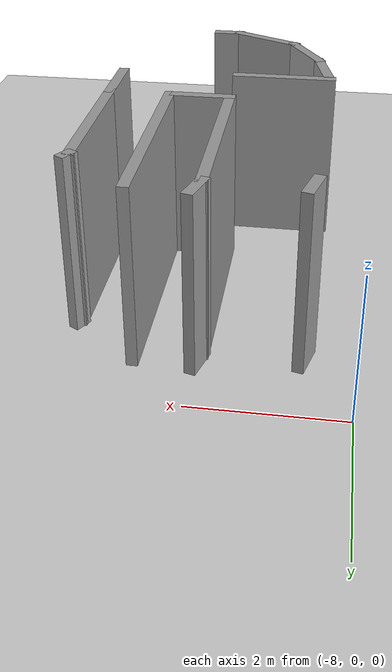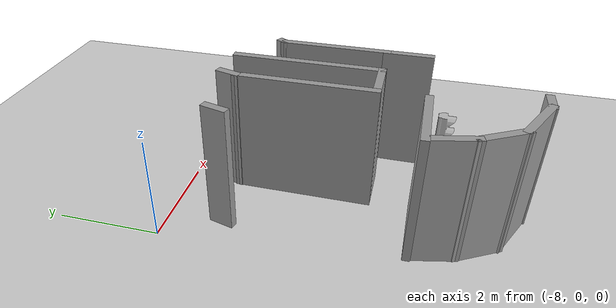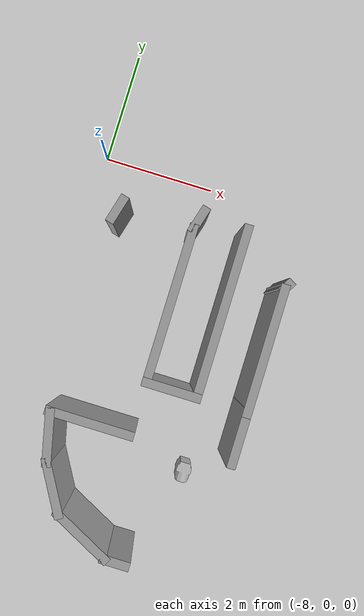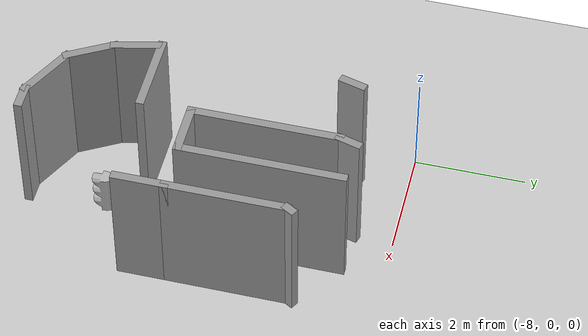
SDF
<sdf version="1.7">
 <world name="default">
  <model name="ground_plane">
   <static>1</static>
   <link name="link">
    <collision name="collision">
     <geometry><plane><normal>0 0 1</normal><size>100 100</size></plane></geometry>
     <surface>
      <contact><collide_bitmask>65535</collide_bitmask></contact>
      <friction><ode><mu>100</mu><mu2>50</mu2></ode></friction>
     </surface>
    </collision>
    <visual name="visual">
     <cast_shadows>0</cast_shadows>
     <geometry><plane><normal>0 0 1</normal><size>100 100</size></plane></geometry>
     <material>
      <script><uri>file://media/materials/scripts/gazebo.material</uri><name>Gazebo/Grey</name></script>
     </material>
    </visual>
   </link>
  </model>
  <model name="Race_Track">
   <link name="Wall_104">
    <pose>-7.85885 -0.567518 0 0 0 -1.8326</pose>
    <visual name="Wall_104_Visual">
     <pose>0 0 1.25 0 -0 0</pose>
     <geometry><box><size>0.5 0.15 2.5</size></box></geometry>
     <material>
      <script><uri>file://media/materials/scripts/gazebo.material</uri><name>Gazebo/Grey</name></script>
      <ambient>1 1 1 1</ambient>
      <shader type="pixel"/>
     </material>
     <meta><layer>0</layer></meta>
    </visual>
    <collision name="Wall_104_Collision">
     <pose>0 0 1.25 0 -0 0</pose>
     <geometry><box><size>0.5 0.15 2.5</size></box></geometry>
     <surface>
      <friction>
       <ode><mu>1</mu><mu2>1</mu2><fdir1>0 0 0</fdir1><slip1>0</slip1><slip2>0</slip2></ode>
       <torsional>
        <coefficient>1</coefficient>
        <patch_radius>0</patch_radius>
        <surface_radius>0</surface_radius>
        <use_patch_radius>1</use_patch_radius>
        <ode><slip>0</slip></ode>
       </torsional>
      </friction>
      <bounce><restitution_coefficient>0</restitution_coefficient><threshold>1e+06</threshold></bounce>
      <contact>
       <collide_without_contact>0</collide_without_contact>
       <collide_without_contact_bitmask>1</collide_without_contact_bitmask>
       <collide_bitmask>1</collide_bitmask>
       <ode>
        <soft_cfm>0</soft_cfm>
        <soft_erp>0.2</soft_erp>
        <kp>1e+13</kp>
        <kd>1</kd>
        <max_vel>0.01</max_vel>
        <min_depth>0</min_depth>
       </ode>
       <bullet>
        <split_impulse>1</split_impulse>
        <split_impulse_penetration_threshold>-0.01</split_impulse_penetration_threshold>
        <soft_cfm>0</soft_cfm>
        <soft_erp>0.2</soft_erp>
        <kp>1e+13</kp>
        <kd>1</kd>
       </bullet>
      </contact>
     </surface>
    </collision>
   </link>
   <link name="Wall_107">
    <pose>-6.54267 -0.34589 0 0 0 -1.84491</pose>
    <visual name="Wall_107_Visual">
     <pose>0 0 1.25 0 -0 0</pose>
     <geometry><box><size>0.484652 0.15 2.5</size></box></geometry>
     <material>
      <script><uri>file://media/materials/scripts/gazebo.material</uri><name>Gazebo/Grey</name></script>
      <ambient>1 1 1 1</ambient>
      <shader type="pixel"/>
     </material>
     <meta><layer>0</layer></meta>
    </visual>
    <collision name="Wall_107_Collision">
     <pose>0 0 1.25 0 -0 0</pose>
     <geometry><box><size>0.484652 0.15 2.5</size></box></geometry>
     <surface>
      <friction>
       <ode><mu>1</mu><mu2>1</mu2><fdir1>0 0 0</fdir1><slip1>0</slip1><slip2>0</slip2></ode>
       <torsional>
        <coefficient>1</coefficient>
        <patch_radius>0</patch_radius>
        <surface_radius>0</surface_radius>
        <use_patch_radius>1</use_patch_radius>
        <ode><slip>0</slip></ode>
       </torsional>
      </friction>
      <bounce><restitution_coefficient>0</restitution_coefficient><threshold>1e+06</threshold></bounce>
      <contact>
       <collide_without_contact>0</collide_without_contact>
       <collide_without_contact_bitmask>1</collide_without_contact_bitmask>
       <collide_bitmask>1</collide_bitmask>
       <ode>
        <soft_cfm>0</soft_cfm>
        <soft_erp>0.2</soft_erp>
        <kp>1e+13</kp>
        <kd>1</kd>
        <max_vel>0.01</max_vel>
        <min_depth>0</min_depth>
       </ode>
       <bullet>
        <split_impulse>1</split_impulse>
        <split_impulse_penetration_threshold>-0.01</split_impulse_penetration_threshold>
        <soft_cfm>0</soft_cfm>
        <soft_erp>0.2</soft_erp>
        <kp>1e+13</kp>
        <kd>1</kd>
       </bullet>
      </contact>
     </surface>
    </collision>
   </link>
   <link name="Wall_112">
    <pose>-6.58796 -1.80697 0 0 0 -1.5708</pose>
    <visual name="Wall_112_Visual">
     <pose>0 0 1.25 0 -0 0</pose>
     <geometry><box><size>2.75 0.15 2.5</size></box></geometry>
     <material>
      <script><uri>file://media/materials/scripts/gazebo.material</uri><name>Gazebo/Grey</name></script>
      <ambient>1 1 1 1</ambient>
      <shader type="pixel"/>
     </material>
     <meta><layer>0</layer></meta>
    </visual>
    <collision name="Wall_112_Collision">
     <pose>0 0 1.25 0 -0 0</pose>
     <geometry><box><size>2.75 0.15 2.5</size></box></geometry>
     <surface>
      <friction>
       <ode><mu>1</mu><mu2>1</mu2><fdir1>0 0 0</fdir1><slip1>0</slip1><slip2>0</slip2></ode>
       <torsional>
        <coefficient>1</coefficient>
        <patch_radius>0</patch_radius>
        <surface_radius>0</surface_radius>
        <use_patch_radius>1</use_patch_radius>
        <ode><slip>0</slip></ode>
       </torsional>
      </friction>
      <bounce><restitution_coefficient>0</restitution_coefficient><threshold>1e+06</threshold></bounce>
      <contact>
       <collide_without_contact>0</collide_without_contact>
       <collide_without_contact_bitmask>1</collide_without_contact_bitmask>
       <collide_bitmask>1</collide_bitmask>
       <ode>
        <soft_cfm>0</soft_cfm>
        <soft_erp>0.2</soft_erp>
        <kp>1e+13</kp>
        <kd>1</kd>
        <max_vel>0.01</max_vel>
        <min_depth>0</min_depth>
       </ode>
       <bullet>
        <split_impulse>1</split_impulse>
        <split_impulse_penetration_threshold>-0.01</split_impulse_penetration_threshold>
        <soft_cfm>0</soft_cfm>
        <soft_erp>0.2</soft_erp>
        <kp>1e+13</kp>
        <kd>1</kd>
       </bullet>
      </contact>
     </surface>
    </collision>
   </link>
   <link name="Wall_114">
    <pose>-6.16296 -3.10697 0 0 -0 0</pose>
    <visual name="Wall_114_Visual">
     <pose>0 0 1.25 0 -0 0</pose>
     <geometry><box><size>1 0.15 2.5</size></box></geometry>
     <material>
      <script><uri>file://media/materials/scripts/gazebo.material</uri><name>Gazebo/Grey</name></script>
      <ambient>1 1 1 1</ambient>
      <shader type="pixel"/>
     </material>
     <meta><layer>0</layer></meta>
    </visual>
    <collision name="Wall_114_Collision">
     <pose>0 0 1.25 0 -0 0</pose>
     <geometry><box><size>1 0.15 2.5</size></box></geometry>
     <surface>
      <friction>
       <ode><mu>1</mu><mu2>1</mu2><fdir1>0 0 0</fdir1><slip1>0</slip1><slip2>0</slip2></ode>
       <torsional>
        <coefficient>1</coefficient>
        <patch_radius>0</patch_radius>
        <surface_radius>0</surface_radius>
        <use_patch_radius>1</use_patch_radius>
        <ode><slip>0</slip></ode>
       </torsional>
      </friction>
      <bounce><restitution_coefficient>0</restitution_coefficient><threshold>1e+06</threshold></bounce>
      <contact>
       <collide_without_contact>0</collide_without_contact>
       <collide_without_contact_bitmask>1</collide_without_contact_bitmask>
       <collide_bitmask>1</collide_bitmask>
       <ode>
        <soft_cfm>0</soft_cfm>
        <soft_erp>0.2</soft_erp>
        <kp>1e+13</kp>
        <kd>1</kd>
        <max_vel>0.01</max_vel>
        <min_depth>0</min_depth>
       </ode>
       <bullet>
        <split_impulse>1</split_impulse>
        <split_impulse_penetration_threshold>-0.01</split_impulse_penetration_threshold>
        <soft_cfm>0</soft_cfm>
        <soft_erp>0.2</soft_erp>
        <kp>1e+13</kp>
        <kd>1</kd>
       </bullet>
      </contact>
     </surface>
    </collision>
   </link>
   <link name="Wall_131">
    <pose>-5.73796 -1.68197 0 0 -0 1.5708</pose>
    <visual name="Wall_131_Visual">
     <pose>0 0 1.25 0 -0 0</pose>
     <geometry><box><size>3 0.15 2.5</size></box></geometry>
     <material>
      <script><uri>file://media/materials/scripts/gazebo.material</uri><name>Gazebo/Grey</name></script>
      <ambient>1 1 1 1</ambient>
      <shader type="pixel"/>
     </material>
     <meta><layer>0</layer></meta>
    </visual>
    <collision name="Wall_131_Collision">
     <pose>0 0 1.25 0 -0 0</pose>
     <geometry><box><size>3 0.15 2.5</size></box></geometry>
     <surface>
      <friction>
       <ode><mu>1</mu><mu2>1</mu2><fdir1>0 0 0</fdir1><slip1>0</slip1><slip2>0</slip2></ode>
       <torsional>
        <coefficient>1</coefficient>
        <patch_radius>0</patch_radius>
        <surface_radius>0</surface_radius>
        <use_patch_radius>1</use_patch_radius>
        <ode><slip>0</slip></ode>
       </torsional>
      </friction>
      <bounce><restitution_coefficient>0</restitution_coefficient><threshold>1e+06</threshold></bounce>
      <contact>
       <collide_without_contact>0</collide_without_contact>
       <collide_without_contact_bitmask>1</collide_without_contact_bitmask>
       <collide_bitmask>1</collide_bitmask>
       <ode>
        <soft_cfm>0</soft_cfm>
        <soft_erp>0.2</soft_erp>
        <kp>1e+13</kp>
        <kd>1</kd>
        <max_vel>0.01</max_vel>
        <min_depth>0</min_depth>
       </ode>
       <bullet>
        <split_impulse>1</split_impulse>
        <split_impulse_penetration_threshold>-0.01</split_impulse_penetration_threshold>
        <soft_cfm>0</soft_cfm>
        <soft_erp>0.2</soft_erp>
        <kp>1e+13</kp>
        <kd>1</kd>
       </bullet>
      </contact>
     </surface>
    </collision>
   </link>
   <link name="Wall_135">
    <pose>-4.88796 -3.53197 0 0 0 -1.5708</pose>
    <visual name="Wall_135_Visual">
     <pose>0 0 1.25 0 -0 0</pose>
     <geometry><box><size>1 0.15 2.5</size></box></geometry>
     <material>
      <script><uri>file://media/materials/scripts/gazebo.material</uri><name>Gazebo/Grey</name></script>
      <ambient>1 1 1 1</ambient>
      <shader type="pixel"/>
     </material>
     <meta><layer>0</layer></meta>
    </visual>
    <collision name="Wall_135_Collision">
     <pose>0 0 1.25 0 -0 0</pose>
     <geometry><box><size>1 0.15 2.5</size></box></geometry>
     <surface>
      <friction>
       <ode><mu>1</mu><mu2>1</mu2><fdir1>0 0 0</fdir1><slip1>0</slip1><slip2>0</slip2></ode>
       <torsional>
        <coefficient>1</coefficient>
        <patch_radius>0</patch_radius>
        <surface_radius>0</surface_radius>
        <use_patch_radius>1</use_patch_radius>
        <ode><slip>0</slip></ode>
       </torsional>
      </friction>
      <bounce><restitution_coefficient>0</restitution_coefficient><threshold>1e+06</threshold></bounce>
      <contact>
       <collide_without_contact>0</collide_without_contact>
       <collide_without_contact_bitmask>1</collide_without_contact_bitmask>
       <collide_bitmask>1</collide_bitmask>
       <ode>
        <soft_cfm>0</soft_cfm>
        <soft_erp>0.2</soft_erp>
        <kp>1e+13</kp>
        <kd>1</kd>
        <max_vel>0.01</max_vel>
        <min_depth>0</min_depth>
       </ode>
       <bullet>
        <split_impulse>1</split_impulse>
        <split_impulse_penetration_threshold>-0.01</split_impulse_penetration_threshold>
        <soft_cfm>0</soft_cfm>
        <soft_erp>0.2</soft_erp>
        <kp>1e+13</kp>
        <kd>1</kd>
       </bullet>
      </contact>
     </surface>
    </collision>
   </link>
   <link name="Wall_137">
    <pose>-4.88796 -2.05697 0 0 -0 1.5708</pose>
    <visual name="Wall_137_Visual">
     <pose>0 0 1.25 0 -0 0</pose>
     <geometry><box><size>2.25 0.15 2.5</size></box></geometry>
     <material>
      <script><uri>file://media/materials/scripts/gazebo.material</uri><name>Gazebo/Grey</name></script>
      <ambient>1 1 1 1</ambient>
      <shader type="pixel"/>
     </material>
     <meta><layer>0</layer></meta>
    </visual>
    <collision name="Wall_137_Collision">
     <pose>0 0 1.25 0 -0 0</pose>
     <geometry><box><size>2.25 0.15 2.5</size></box></geometry>
     <surface>
      <friction>
       <ode><mu>1</mu><mu2>1</mu2><fdir1>0 0 0</fdir1><slip1>0</slip1><slip2>0</slip2></ode>
       <torsional>
        <coefficient>1</coefficient>
        <patch_radius>0</patch_radius>
        <surface_radius>0</surface_radius>
        <use_patch_radius>1</use_patch_radius>
        <ode><slip>0</slip></ode>
       </torsional>
      </friction>
      <bounce><restitution_coefficient>0</restitution_coefficient><threshold>1e+06</threshold></bounce>
      <contact>
       <collide_without_contact>0</collide_without_contact>
       <collide_without_contact_bitmask>1</collide_without_contact_bitmask>
       <collide_bitmask>1</collide_bitmask>
       <ode>
        <soft_cfm>0</soft_cfm>
        <soft_erp>0.2</soft_erp>
        <kp>1e+13</kp>
        <kd>1</kd>
        <max_vel>0.01</max_vel>
        <min_depth>0</min_depth>
       </ode>
       <bullet>
        <split_impulse>1</split_impulse>
        <split_impulse_penetration_threshold>-0.01</split_impulse_penetration_threshold>
        <soft_cfm>0</soft_cfm>
        <soft_erp>0.2</soft_erp>
        <kp>1e+13</kp>
        <kd>1</kd>
       </bullet>
      </contact>
     </surface>
    </collision>
   </link>
   <link name="Wall_139">
    <pose>-4.86296 -0.963668 0 0 -0 1.0472</pose>
    <visual name="Wall_139_Visual">
     <pose>0 0 1.25 0 -0 0</pose>
     <geometry><box><size>0.25 0.15 2.5</size></box></geometry>
     <material>
      <script><uri>file://media/materials/scripts/gazebo.material</uri><name>Gazebo/Grey</name></script>
      <ambient>1 1 1 1</ambient>
      <shader type="pixel"/>
     </material>
     <meta><layer>0</layer></meta>
    </visual>
    <collision name="Wall_139_Collision">
     <pose>0 0 1.25 0 -0 0</pose>
     <geometry><box><size>0.25 0.15 2.5</size></box></geometry>
     <surface>
      <friction>
       <ode><mu>1</mu><mu2>1</mu2><fdir1>0 0 0</fdir1><slip1>0</slip1><slip2>0</slip2></ode>
       <torsional>
        <coefficient>1</coefficient>
        <patch_radius>0</patch_radius>
        <surface_radius>0</surface_radius>
        <use_patch_radius>1</use_patch_radius>
        <ode><slip>0</slip></ode>
       </torsional>
      </friction>
      <bounce><restitution_coefficient>0</restitution_coefficient><threshold>1e+06</threshold></bounce>
      <contact>
       <collide_without_contact>0</collide_without_contact>
       <collide_without_contact_bitmask>1</collide_without_contact_bitmask>
       <collide_bitmask>1</collide_bitmask>
       <ode>
        <soft_cfm>0</soft_cfm>
        <soft_erp>0.2</soft_erp>
        <kp>1e+13</kp>
        <kd>1</kd>
        <max_vel>0.01</max_vel>
        <min_depth>0</min_depth>
       </ode>
       <bullet>
        <split_impulse>1</split_impulse>
        <split_impulse_penetration_threshold>-0.01</split_impulse_penetration_threshold>
        <soft_cfm>0</soft_cfm>
        <soft_erp>0.2</soft_erp>
        <kp>1e+13</kp>
        <kd>1</kd>
       </bullet>
      </contact>
     </surface>
    </collision>
   </link>
   <link name="Wall_30">
    <pose>-7.83779 -4.41151 0 0 0 -1.34133</pose>
    <visual name="Wall_30_Visual">
     <pose>0 0 1.25 0 -0 0</pose>
     <geometry><box><size>0.955334 0.15 2.5</size></box></geometry>
     <material>
      <script><uri>file://media/materials/scripts/gazebo.material</uri><name>Gazebo/Grey</name></script>
      <ambient>1 1 1 1</ambient>
      <shader type="pixel"/>
     </material>
     <meta><layer>0</layer></meta>
    </visual>
    <collision name="Wall_30_Collision">
     <pose>0 0 1.25 0 -0 0</pose>
     <geometry><box><size>0.955334 0.15 2.5</size></box></geometry>
     <surface>
      <friction>
       <ode><mu>1</mu><mu2>1</mu2><fdir1>0 0 0</fdir1><slip1>0</slip1><slip2>0</slip2></ode>
       <torsional>
        <coefficient>1</coefficient>
        <patch_radius>0</patch_radius>
        <surface_radius>0</surface_radius>
        <use_patch_radius>1</use_patch_radius>
        <ode><slip>0</slip></ode>
       </torsional>
      </friction>
      <bounce><restitution_coefficient>0</restitution_coefficient><threshold>1e+06</threshold></bounce>
      <contact>
       <collide_without_contact>0</collide_without_contact>
       <collide_without_contact_bitmask>1</collide_without_contact_bitmask>
       <collide_bitmask>1</collide_bitmask>
       <ode>
        <soft_cfm>0</soft_cfm>
        <soft_erp>0.2</soft_erp>
        <kp>1e+13</kp>
        <kd>1</kd>
        <max_vel>0.01</max_vel>
        <min_depth>0</min_depth>
       </ode>
       <bullet>
        <split_impulse>1</split_impulse>
        <split_impulse_penetration_threshold>-0.01</split_impulse_penetration_threshold>
        <soft_cfm>0</soft_cfm>
        <soft_erp>0.2</soft_erp>
        <kp>1e+13</kp>
        <kd>1</kd>
       </bullet>
      </contact>
     </surface>
    </collision>
   </link>
   <link name="Wall_31">
    <pose>-7.5337 -5.17168 0 0 0 -1.0472</pose>
    <visual name="Wall_31_Visual">
     <pose>0 0 1.25 0 -0 0</pose>
     <geometry><box><size>1 0.15 2.5</size></box></geometry>
     <material>
      <script><uri>file://media/materials/scripts/gazebo.material</uri><name>Gazebo/Grey</name></script>
      <ambient>1 1 1 1</ambient>
      <shader type="pixel"/>
     </material>
     <meta><layer>0</layer></meta>
    </visual>
    <collision name="Wall_31_Collision">
     <pose>0 0 1.25 0 -0 0</pose>
     <geometry><box><size>1 0.15 2.5</size></box></geometry>
     <surface>
      <friction>
       <ode><mu>1</mu><mu2>1</mu2><fdir1>0 0 0</fdir1><slip1>0</slip1><slip2>0</slip2></ode>
       <torsional>
        <coefficient>1</coefficient>
        <patch_radius>0</patch_radius>
        <surface_radius>0</surface_radius>
        <use_patch_radius>1</use_patch_radius>
        <ode><slip>0</slip></ode>
       </torsional>
      </friction>
      <bounce><restitution_coefficient>0</restitution_coefficient><threshold>1e+06</threshold></bounce>
      <contact>
       <collide_without_contact>0</collide_without_contact>
       <collide_without_contact_bitmask>1</collide_without_contact_bitmask>
       <collide_bitmask>1</collide_bitmask>
       <ode>
        <soft_cfm>0</soft_cfm>
        <soft_erp>0.2</soft_erp>
        <kp>1e+13</kp>
        <kd>1</kd>
        <max_vel>0.01</max_vel>
        <min_depth>0</min_depth>
       </ode>
       <bullet>
        <split_impulse>1</split_impulse>
        <split_impulse_penetration_threshold>-0.01</split_impulse_penetration_threshold>
        <soft_cfm>0</soft_cfm>
        <soft_erp>0.2</soft_erp>
        <kp>1e+13</kp>
        <kd>1</kd>
       </bullet>
      </contact>
     </surface>
    </collision>
   </link>
   <link name="Wall_32">
    <pose>-6.86379 -5.77018 0 0 0 -0.466674</pose>
    <visual name="Wall_32_Visual">
     <pose>0 0 1.25 0 -0 0</pose>
     <geometry><box><size>1.17436 0.15 2.5</size></box></geometry>
     <material>
      <script><uri>file://media/materials/scripts/gazebo.material</uri><name>Gazebo/Grey</name></script>
      <ambient>1 1 1 1</ambient>
      <shader type="pixel"/>
     </material>
     <meta><layer>0</layer></meta>
    </visual>
    <collision name="Wall_32_Collision">
     <pose>0 0 1.25 0 -0 0</pose>
     <geometry><box><size>1.17436 0.15 2.5</size></box></geometry>
     <surface>
      <friction>
       <ode><mu>1</mu><mu2>1</mu2><fdir1>0 0 0</fdir1><slip1>0</slip1><slip2>0</slip2></ode>
       <torsional>
        <coefficient>1</coefficient>
        <patch_radius>0</patch_radius>
        <surface_radius>0</surface_radius>
        <use_patch_radius>1</use_patch_radius>
        <ode><slip>0</slip></ode>
       </torsional>
      </friction>
      <bounce><restitution_coefficient>0</restitution_coefficient><threshold>1e+06</threshold></bounce>
      <contact>
       <collide_without_contact>0</collide_without_contact>
       <collide_without_contact_bitmask>1</collide_without_contact_bitmask>
       <collide_bitmask>1</collide_bitmask>
       <ode>
        <soft_cfm>0</soft_cfm>
        <soft_erp>0.2</soft_erp>
        <kp>1e+13</kp>
        <kd>1</kd>
        <max_vel>0.01</max_vel>
        <min_depth>0</min_depth>
       </ode>
       <bullet>
        <split_impulse>1</split_impulse>
        <split_impulse_penetration_threshold>-0.01</split_impulse_penetration_threshold>
        <soft_cfm>0</soft_cfm>
        <soft_erp>0.2</soft_erp>
        <kp>1e+13</kp>
        <kd>1</kd>
       </bullet>
      </contact>
     </surface>
    </collision>
   </link>
   <link name="Wall_33">
    <pose>-6.23138 -6.00553 0 0 -0 0</pose>
    <visual name="Wall_33_Visual">
     <pose>0 0 1.25 0 -0 0</pose>
     <geometry><box><size>0.5 0.15 2.5</size></box></geometry>
     <material>
      <script><uri>file://media/materials/scripts/gazebo.material</uri><name>Gazebo/Grey</name></script>
      <ambient>1 1 1 1</ambient>
      <shader type="pixel"/>
     </material>
     <meta><layer>0</layer></meta>
    </visual>
    <collision name="Wall_33_Collision">
     <pose>0 0 1.25 0 -0 0</pose>
     <geometry><box><size>0.5 0.15 2.5</size></box></geometry>
     <surface>
      <friction>
       <ode><mu>1</mu><mu2>1</mu2><fdir1>0 0 0</fdir1><slip1>0</slip1><slip2>0</slip2></ode>
       <torsional>
        <coefficient>1</coefficient>
        <patch_radius>0</patch_radius>
        <surface_radius>0</surface_radius>
        <use_patch_radius>1</use_patch_radius>
        <ode><slip>0</slip></ode>
       </torsional>
      </friction>
      <bounce><restitution_coefficient>0</restitution_coefficient><threshold>1e+06</threshold></bounce>
      <contact>
       <collide_without_contact>0</collide_without_contact>
       <collide_without_contact_bitmask>1</collide_without_contact_bitmask>
       <collide_bitmask>1</collide_bitmask>
       <ode>
        <soft_cfm>0</soft_cfm>
        <soft_erp>0.2</soft_erp>
        <kp>1e+13</kp>
        <kd>1</kd>
        <max_vel>0.01</max_vel>
        <min_depth>0</min_depth>
       </ode>
       <bullet>
        <split_impulse>1</split_impulse>
        <split_impulse_penetration_threshold>-0.01</split_impulse_penetration_threshold>
        <soft_cfm>0</soft_cfm>
        <soft_erp>0.2</soft_erp>
        <kp>1e+13</kp>
        <kd>1</kd>
       </bullet>
      </contact>
     </surface>
    </collision>
   </link>
   <link name="Wall_35">
    <pose>-7.27279 -4.00099 0 0 -0 0</pose>
    <visual name="Wall_35_Visual">
     <pose>0 0 1.25 0 -0 0</pose>
     <geometry><box><size>1.5 0.15 2.5</size></box></geometry>
     <material>
      <script><uri>file://media/materials/scripts/gazebo.material</uri><name>Gazebo/Grey</name></script>
      <ambient>1 1 1 1</ambient>
      <shader type="pixel"/>
     </material>
     <meta><layer>0</layer></meta>
    </visual>
    <collision name="Wall_35_Collision">
     <pose>0 0 1.25 0 -0 0</pose>
     <geometry><box><size>1.5 0.15 2.5</size></box></geometry>
     <surface>
      <friction>
       <ode><mu>1</mu><mu2>1</mu2><fdir1>0 0 0</fdir1><slip1>0</slip1><slip2>0</slip2></ode>
       <torsional>
        <coefficient>1</coefficient>
        <patch_radius>0</patch_radius>
        <surface_radius>0</surface_radius>
        <use_patch_radius>1</use_patch_radius>
        <ode><slip>0</slip></ode>
       </torsional>
      </friction>
      <bounce><restitution_coefficient>0</restitution_coefficient><threshold>1e+06</threshold></bounce>
      <contact>
       <collide_without_contact>0</collide_without_contact>
       <collide_without_contact_bitmask>1</collide_without_contact_bitmask>
       <collide_bitmask>1</collide_bitmask>
       <ode>
        <soft_cfm>0</soft_cfm>
        <soft_erp>0.2</soft_erp>
        <kp>1e+13</kp>
        <kd>1</kd>
        <max_vel>0.01</max_vel>
        <min_depth>0</min_depth>
       </ode>
       <bullet>
        <split_impulse>1</split_impulse>
        <split_impulse_penetration_threshold>-0.01</split_impulse_penetration_threshold>
        <soft_cfm>0</soft_cfm>
        <soft_erp>0.2</soft_erp>
        <kp>1e+13</kp>
        <kd>1</kd>
       </bullet>
      </contact>
     </surface>
    </collision>
   </link>
   <model name="stop_light">
    <static>1</static>
    <pose>-5.54624 -4.30489 1.60498 0 -0 0</pose>
    <link name="link">
     <collision name="collision">
      <geometry>
       <mesh><uri>model://stop_light/meshes/stop_light.obj</uri><scale>0.01 0.01 0.01</scale></mesh>
      </geometry>
     </collision>
     <visual name="frame">
      <geometry>
       <mesh><uri>model://stop_light/meshes/stop_light.obj</uri><scale>0.01 0.01 0.01</scale></mesh>
      </geometry>
     </visual>
     <visual name="red">
      <pose>-0.001123 -0.082251 -0.147514 0 -0 0</pose>
      <geometry><sphere><radius>0.1012</radius></sphere></geometry>
      <material>
       <script>
        <uri>model://stop_light/materials/scripts/</uri>
        <uri>model://stop_light/materials/textures/</uri>
        <name>StopLight/Light</name>
       </script>
       <ambient>1 0 0 1</ambient>
       <specular>1 0 0 1</specular>
      </material>
     </visual>
     <visual name="yellow">
      <pose>-0.001123 -0.082251 -0.402 0 -0 0</pose>
      <geometry><sphere><radius>0.1012</radius></sphere></geometry>
      <material>
       <script>
        <uri>model://stop_light/materials/scripts/</uri>
        <uri>model://stop_light/materials/textures/</uri>
        <name>StopLight/Light</name>
       </script>
       <ambient>1 1 0 1</ambient>
       <specular>1 1 0 1</specular>
      </material>
     </visual>
     <visual name="green">
      <pose>-0.001123 -0.082251 -0.655 0 -0 0</pose>
      <geometry><sphere><radius>0.1012</radius></sphere></geometry>
      <material>
       <script>
        <uri>model://stop_light/materials/scripts/</uri>
        <uri>model://stop_light/materials/textures/</uri>
        <name>StopLight/Light</name>
       </script>
       <ambient>0 1 0 1</ambient>
       <specular>0 1 0 1</specular>
      </material>
     </visual>
    </link>
   </model>
   <static>1</static>
   <pose>0.482814 -0.498319 0 0 -0 0</pose>
  </model>
 </world>
</sdf>
